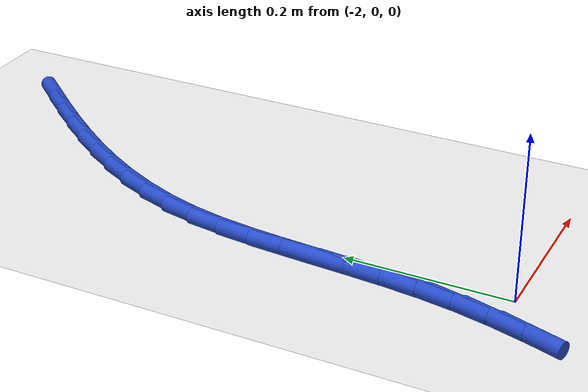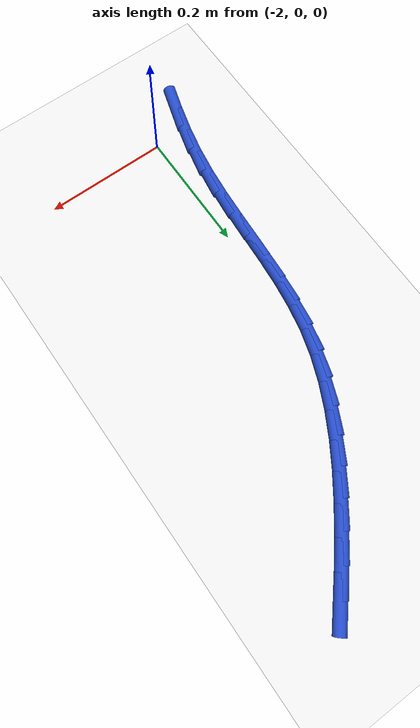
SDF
<sdf version="1.6">
 <world name="default">
  <model name="ground_plane">
   <static>1</static>
   <link name="link">
    <collision name="collision">
     <geometry><plane><normal>0 0 1</normal><size>100 100</size></plane></geometry>
     <surface><friction><ode><mu>100</mu><mu2>50</mu2></ode></friction></surface>
    </collision>
    <visual name="visual">
     <cast_shadows>0</cast_shadows>
     <geometry><plane><normal>0 0 1</normal><size>100 100</size></plane></geometry>
     <material>
      <script><uri>file://media/materials/scripts/gazebo.material</uri><name>Gazebo/WhiteGlow</name></script>
     </material>
    </visual>
   </link>
  </model>
  <model name="line">
   <link name="link_59">
    <pose>-1.8046903331928204 0.7202362526002875 0.01 0 1.57 0.8604777571731997</pose>
    <collision name="collision">
     <geometry><cylinder><radius>0.01</radius><length>0.08</length></cylinder></geometry>
    </collision>
    <visual name="visual">
     <material>
      <script><name>Gazebo/Blue</name><uri>file://media/materials/scripts/gazebo.material</uri></script>
     </material>
     <geometry><cylinder><radius>0.01</radius><length>0.08</length></cylinder></geometry>
    </visual>
   </link>
   <link name="link_60">
    <pose>-1.8337016027327944 0.686505463564218 0.01 0 1.57 0.8821889055874872</pose>
    <collision name="collision">
     <geometry><cylinder><radius>0.01</radius><length>0.08</length></cylinder></geometry>
    </collision>
    <visual name="visual">
     <material>
      <script><name>Gazebo/Blue</name><uri>file://media/materials/scripts/gazebo.material</uri></script>
     </material>
     <geometry><cylinder><radius>0.01</radius><length>0.08</length></cylinder></geometry>
    </visual>
   </link>
   <link name="link_61">
    <pose>-1.861902226230116 0.6522397221593704 0.01 0 1.57 0.9116207322390194</pose>
    <collision name="collision">
     <geometry><cylinder><radius>0.01</radius><length>0.08</length></cylinder></geometry>
    </collision>
    <visual name="visual">
     <material>
      <script><name>Gazebo/Blue</name><uri>file://media/materials/scripts/gazebo.material</uri></script>
     </material>
     <geometry><cylinder><radius>0.01</radius><length>0.08</length></cylinder></geometry>
    </visual>
   </link>
   <link name="link_62">
    <pose>-1.888915033220227 0.6173748052487782 0.01 0 1.57 0.9492350208165029</pose>
    <collision name="collision">
     <geometry><cylinder><radius>0.01</radius><length>0.08</length></cylinder></geometry>
    </collision>
    <visual name="visual">
     <material>
      <script><name>Gazebo/Blue</name><uri>file://media/materials/scripts/gazebo.material</uri></script>
     </material>
     <geometry><cylinder><radius>0.01</radius><length>0.08</length></cylinder></geometry>
    </visual>
   </link>
   <link name="link_63">
    <pose>-1.9143628532385697 0.5818464896954726 0.01 0 1.57 0.9955988903554217</pose>
    <collision name="collision">
     <geometry><cylinder><radius>0.01</radius><length>0.08</length></cylinder></geometry>
    </collision>
    <visual name="visual">
     <material>
      <script><name>Gazebo/Blue</name><uri>file://media/materials/scripts/gazebo.material</uri></script>
     </material>
     <geometry><cylinder><radius>0.01</radius><length>0.08</length></cylinder></geometry>
    </visual>
   </link>
   <link name="link_64">
    <pose>-1.9378685158205866 0.545590552362487 0.01 0 1.57 1.0513211791074422</pose>
    <collision name="collision">
     <geometry><cylinder><radius>0.01</radius><length>0.08</length></cylinder></geometry>
    </collision>
    <visual name="visual">
     <material>
      <script><name>Gazebo/Blue</name><uri>file://media/materials/scripts/gazebo.material</uri></script>
     </material>
     <geometry><cylinder><radius>0.01</radius><length>0.08</length></cylinder></geometry>
    </visual>
   </link>
   <link name="link_65">
    <pose>-1.9590548505017196 0.5085427701128534 0.01 0 1.57 1.1169490594972817</pose>
    <collision name="collision">
     <geometry><cylinder><radius>0.01</radius><length>0.08</length></cylinder></geometry>
    </collision>
    <visual name="visual">
     <material>
      <script><name>Gazebo/Blue</name><uri>file://media/materials/scripts/gazebo.material</uri></script>
     </material>
     <geometry><cylinder><radius>0.01</radius><length>0.08</length></cylinder></geometry>
    </visual>
   </link>
   <link name="link_66">
    <pose>-1.9775446868174107 0.4706389198096039 0.01 0 1.57 1.1928124510432399</pose>
    <collision name="collision">
     <geometry><cylinder><radius>0.01</radius><length>0.08</length></cylinder></geometry>
    </collision>
    <visual name="visual">
     <material>
      <script><name>Gazebo/Blue</name><uri>file://media/materials/scripts/gazebo.material</uri></script>
     </material>
     <geometry><cylinder><radius>0.01</radius><length>0.08</length></cylinder></geometry>
    </visual>
   </link>
   <link name="link_67">
    <pose>-1.9929608543031023 0.4318147783157714 0.01 0 1.57 1.2787673944534794</pose>
    <collision name="collision">
     <geometry><cylinder><radius>0.01</radius><length>0.08</length></cylinder></geometry>
    </collision>
    <visual name="visual">
     <material>
      <script><name>Gazebo/Blue</name><uri>file://media/materials/scripts/gazebo.material</uri></script>
     </material>
     <geometry><cylinder><radius>0.01</radius><length>0.08</length></cylinder></geometry>
    </visual>
   </link>
   <link name="link_68">
    <pose>-2.0049281782285004 0.392006465010372 0.01 0 1.57 1.365439443051852</pose>
    <collision name="collision">
     <geometry><cylinder><radius>0.01</radius><length>0.08</length></cylinder></geometry>
    </collision>
    <visual name="visual">
     <material>
      <script><name>Gazebo/Blue</name><uri>file://media/materials/scripts/gazebo.material</uri></script>
     </material>
     <geometry><cylinder><radius>0.01</radius><length>0.08</length></cylinder></geometry>
    </visual>
   </link>
   <link name="link_69">
    <pose>-2.013425619933637 0.3512108775367873 0.01 0 1.57 1.4332689729244938</pose>
    <collision name="collision">
     <geometry><cylinder><radius>0.01</radius><length>0.08</length></cylinder></geometry>
    </collision>
    <visual name="visual">
     <material>
      <script><name>Gazebo/Blue</name><uri>file://media/materials/scripts/gazebo.material</uri></script>
     </material>
     <geometry><cylinder><radius>0.01</radius><length>0.08</length></cylinder></geometry>
    </visual>
   </link>
   <link name="link_70">
    <pose>-2.019190819043395 0.3095551209734152 0.01 0 1.57 1.4797491549518453</pose>
    <collision name="collision">
     <geometry><cylinder><radius>0.01</radius><length>0.08</length></cylinder></geometry>
    </collision>
    <visual name="visual">
     <material>
      <script><name>Gazebo/Blue</name><uri>file://media/materials/scripts/gazebo.material</uri></script>
     </material>
     <geometry><cylinder><radius>0.01</radius><length>0.08</length></cylinder></geometry>
    </visual>
   </link>
   <link name="link_71">
    <pose>-2.0230593661691905 0.2671831111430344 0.01 0 1.57 1.5055142459151896</pose>
    <collision name="collision">
     <geometry><cylinder><radius>0.01</radius><length>0.08</length></cylinder></geometry>
    </collision>
    <visual name="visual">
     <material>
      <script><name>Gazebo/Blue</name><uri>file://media/materials/scripts/gazebo.material</uri></script>
     </material>
     <geometry><cylinder><radius>0.01</radius><length>0.08</length></cylinder></geometry>
    </visual>
   </link>
   <link name="link_72">
    <pose>-2.0258668519224394 0.22423876386842448 0.01 0 1.57 1.511335716362047</pose>
    <collision name="collision">
     <geometry><cylinder><radius>0.01</radius><length>0.08</length></cylinder></geometry>
    </collision>
    <visual name="visual">
     <material>
      <script><name>Gazebo/Blue</name><uri>file://media/materials/scripts/gazebo.material</uri></script>
     </material>
     <geometry><cylinder><radius>0.01</radius><length>0.08</length></cylinder></geometry>
    </visual>
   </link>
   <link name="link_73">
    <pose>-2.0284488669145597 0.18086599497236386 0.01 0 1.57 1.497808161743431</pose>
    <collision name="collision">
     <geometry><cylinder><radius>0.01</radius><length>0.08</length></cylinder></geometry>
    </collision>
    <visual name="visual">
     <material>
      <script><name>Gazebo/Blue</name><uri>file://media/materials/scripts/gazebo.material</uri></script>
     </material>
     <geometry><cylinder><radius>0.01</radius><length>0.08</length></cylinder></geometry>
    </visual>
   </link>
   <link name="link_74">
    <pose>-2.031641001756967 0.13720872027763226 0.01 0 1.57 1.465297437117599</pose>
    <collision name="collision">
     <geometry><cylinder><radius>0.01</radius><length>0.08</length></cylinder></geometry>
    </collision>
    <visual name="visual">
     <material>
      <script><name>Gazebo/Blue</name><uri>file://media/materials/scripts/gazebo.material</uri></script>
     </material>
     <geometry><cylinder><radius>0.01</radius><length>0.08</length></cylinder></geometry>
    </visual>
   </link>
   <link name="link_75">
    <pose>-2.0362788470610775 0.09341085560700829 0.01 0 1.57 1.414108558348199</pose>
    <collision name="collision">
     <geometry><cylinder><radius>0.01</radius><length>0.08</length></cylinder></geometry>
    </collision>
    <visual name="visual">
     <material>
      <script><name>Gazebo/Blue</name><uri>file://media/materials/scripts/gazebo.material</uri></script>
     </material>
     <geometry><cylinder><radius>0.01</radius><length>0.08</length></cylinder></geometry>
    </visual>
   </link>
   <link name="link_76">
    <pose>-2.043197633596397 0.04961629181653965 0.01 0 1.57 1.3523382513944198</pose>
    <collision name="collision">
     <geometry><cylinder><radius>0.01</radius><length>0.08</length></cylinder></geometry>
    </collision>
    <visual name="visual">
     <material>
      <script><name>Gazebo/Blue</name><uri>file://media/materials/scripts/gazebo.material</uri></script>
     </material>
     <geometry><cylinder><radius>0.01</radius><length>0.08</length></cylinder></geometry>
    </visual>
   </link>
   <link name="link_77">
    <pose>-2.0528926280631867 0.0059453322055828695 0.01 0 1.57 1.3017079581913449</pose>
    <collision name="collision">
     <geometry><cylinder><radius>0.01</radius><length>0.08</length></cylinder></geometry>
    </collision>
    <visual name="visual">
     <material>
      <script><name>Gazebo/Blue</name><uri>file://media/materials/scripts/gazebo.material</uri></script>
     </material>
     <geometry><cylinder><radius>0.01</radius><length>0.08</length></cylinder></geometry>
    </visual>
   </link>
   <link name="link_78">
    <pose>-2.0648873995272217 -0.03754913873665365 0.01 0 1.57 1.2653548543900073</pose>
    <collision name="collision">
     <geometry><cylinder><radius>0.01</radius><length>0.08</length></cylinder></geometry>
    </collision>
    <visual name="visual">
     <material>
      <script><name>Gazebo/Blue</name><uri>file://media/materials/scripts/gazebo.material</uri></script>
     </material>
     <geometry><cylinder><radius>0.01</radius><length>0.08</length></cylinder></geometry>
    </visual>
   </link>
  </model>
 </world>
</sdf>
